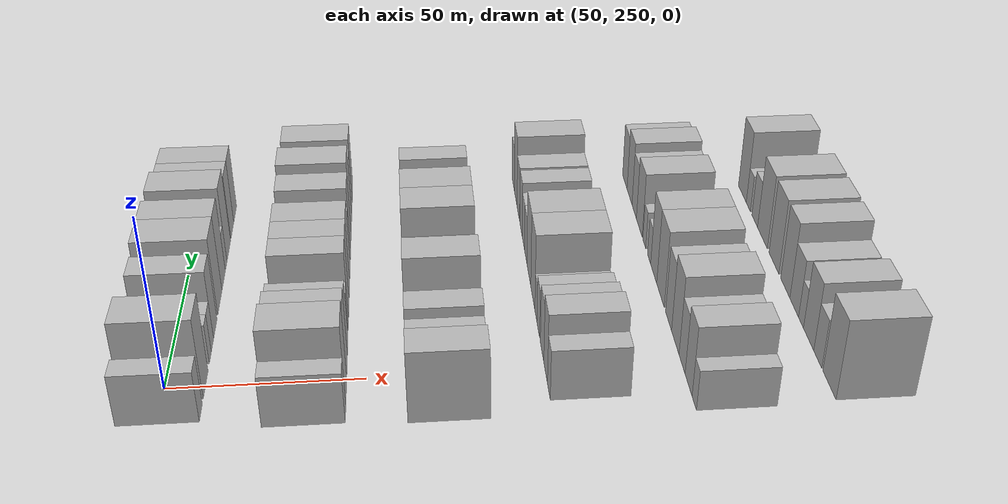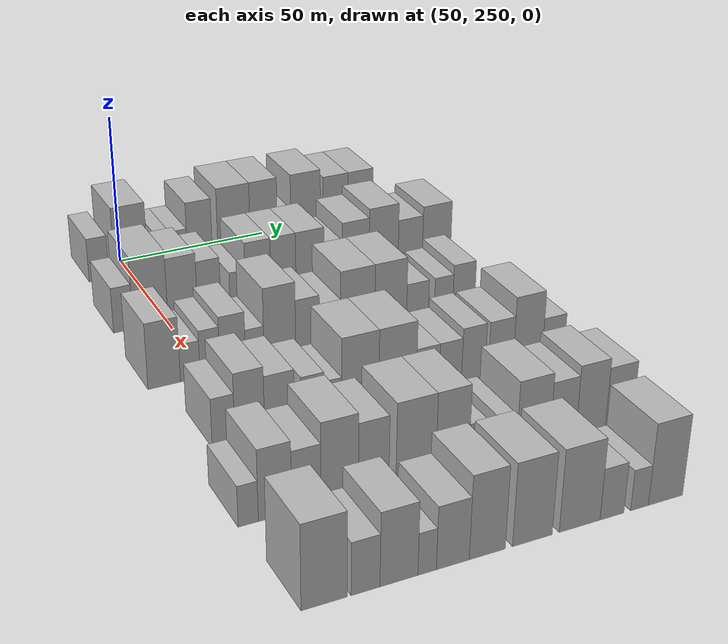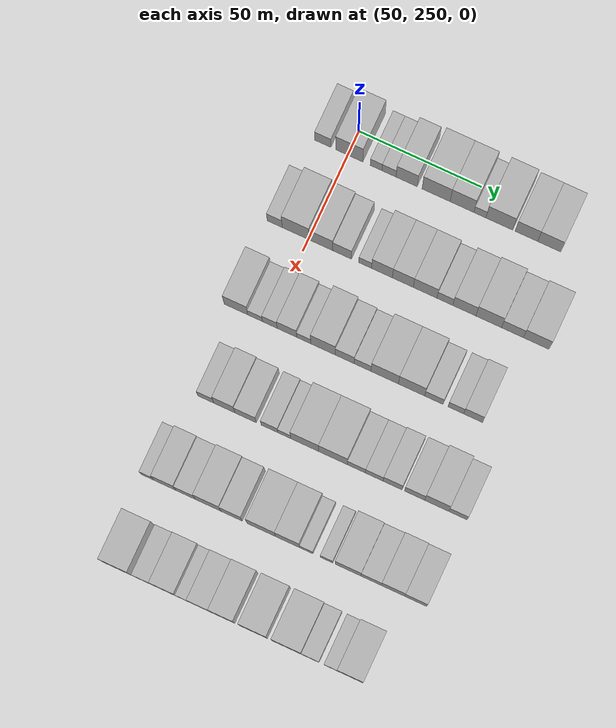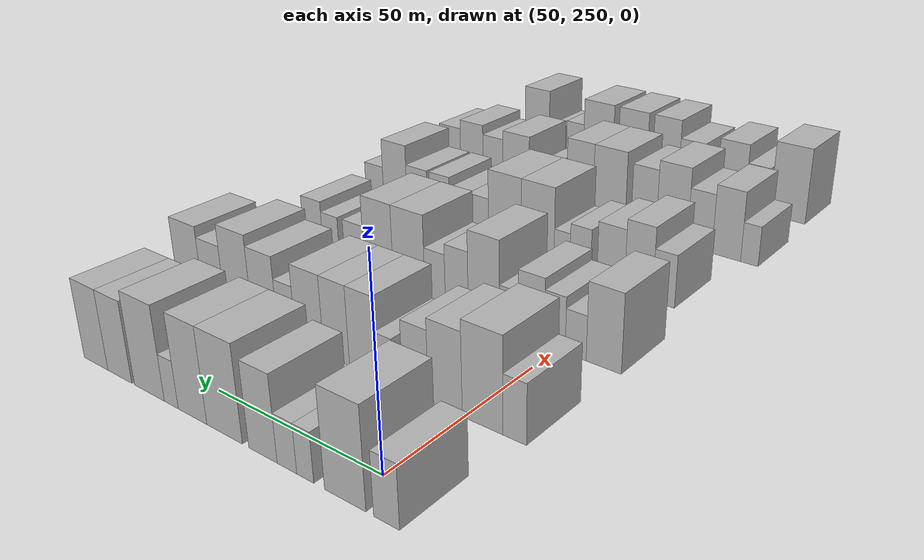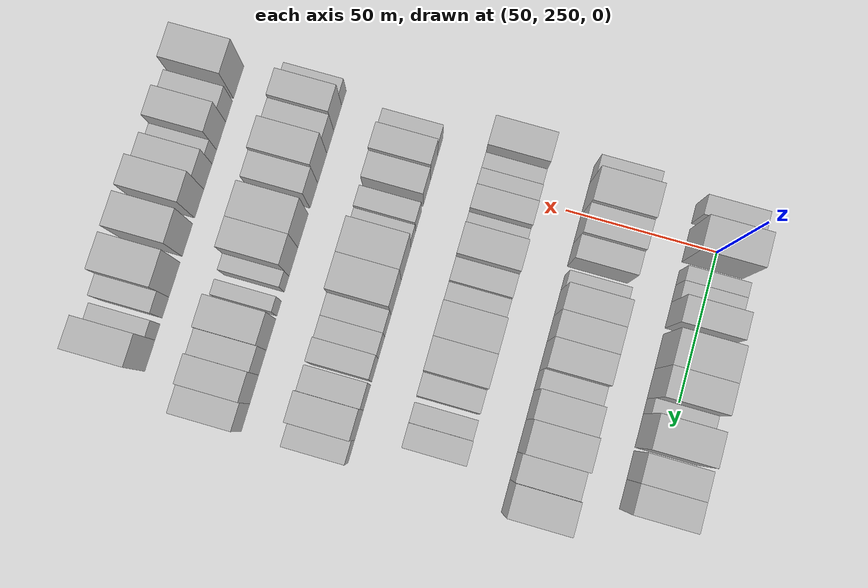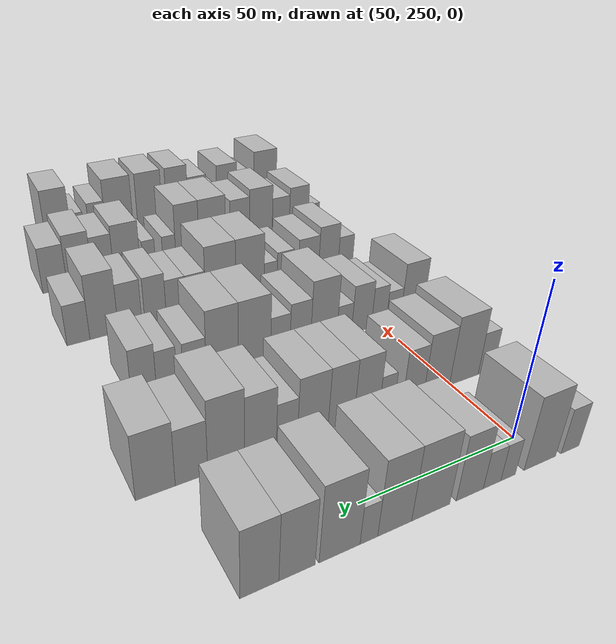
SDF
<sdf version="1.6">
 <world name="default">
  <model name="building_90">
   <static>1</static>
   <pose>50.0000 239.7258 0 0.000000 0.000000 0.000000</pose>
   <link name="link">
    <pose>0 0 7.50 0 0 0</pose>
    <collision name="collision"><geometry><box><size>20.0000 6.5760 15.0000</size></box></geometry></collision>
    <visual name="visual">
     <cast_shadows>0</cast_shadows>
     <geometry><box><size>20.0000 6.5760 15.0000</size></box></geometry>
     <material>
      <script>
       <uri>model://HANNAS_wall/materials/scripts</uri>
       <uri>model://HANNAS_wall/materials/textures</uri>
       <name>vrc/HANNAS_wall</name>
      </script>
     </material>
    </visual>
   </link>
  </model>
  <model name="building_91">
   <static>1</static>
   <pose>50.0000 250.5645 0 0.000000 0.000000 0.000000</pose>
   <link name="link">
    <pose>0 0 12.00 0 0 0</pose>
    <collision name="collision"><geometry><box><size>20.0000 11.1013 24.0000</size></box></geometry></collision>
    <visual name="visual">
     <cast_shadows>0</cast_shadows>
     <geometry><box><size>20.0000 11.1013 24.0000</size></box></geometry>
     <material>
      <script>
       <uri>model://HANNAS_wall/materials/scripts</uri>
       <uri>model://HANNAS_wall/materials/textures</uri>
       <name>vrc/HANNAS_wall</name>
      </script>
     </material>
    </visual>
   </link>
  </model>
  <model name="building_92">
   <static>1</static>
   <pose>50.0000 261.5331 0 0.000000 0.000000 0.000000</pose>
   <link name="link">
    <pose>0 0 6.00 0 0 0</pose>
    <collision name="collision"><geometry><box><size>20.0000 4.8361 12.0000</size></box></geometry></collision>
    <visual name="visual">
     <cast_shadows>0</cast_shadows>
     <geometry><box><size>20.0000 4.8361 12.0000</size></box></geometry>
     <material>
      <script>
       <uri>model://HANNAS_wall/materials/scripts</uri>
       <uri>model://HANNAS_wall/materials/textures</uri>
       <name>vrc/HANNAS_wall</name>
      </script>
     </material>
    </visual>
   </link>
  </model>
  <model name="building_93">
   <static>1</static>
   <pose>50.0000 266.8217 0 0.000000 0.000000 0.000000</pose>
   <link name="link">
    <pose>0 0 6.00 0 0 0</pose>
    <collision name="collision"><geometry><box><size>20.0000 5.7410 12.0000</size></box></geometry></collision>
    <visual name="visual">
     <cast_shadows>0</cast_shadows>
     <geometry><box><size>20.0000 5.7410 12.0000</size></box></geometry>
     <material>
      <script>
       <uri>model://HANNAS_wall/materials/scripts</uri>
       <uri>model://HANNAS_wall/materials/textures</uri>
       <name>vrc/HANNAS_wall</name>
      </script>
     </material>
    </visual>
   </link>
  </model>
  <model name="building_94">
   <static>1</static>
   <pose>50.0000 274.0013 0 0.000000 0.000000 0.000000</pose>
   <link name="link">
    <pose>0 0 10.50 0 0 0</pose>
    <collision name="collision"><geometry><box><size>20.0000 8.6182 21.0000</size></box></geometry></collision>
    <visual name="visual">
     <cast_shadows>0</cast_shadows>
     <geometry><box><size>20.0000 8.6182 21.0000</size></box></geometry>
     <material>
      <script>
       <uri>model://HANNAS_wall/materials/scripts</uri>
       <uri>model://HANNAS_wall/materials/textures</uri>
       <name>vrc/HANNAS_wall</name>
      </script>
     </material>
    </visual>
   </link>
  </model>
  <model name="building_95">
   <static>1</static>
   <pose>50.0000 286.0329 0 0.000000 0.000000 0.000000</pose>
   <link name="link">
    <pose>0 0 12.00 0 0 0</pose>
    <collision name="collision"><geometry><box><size>20.0000 11.4449 24.0000</size></box></geometry></collision>
    <visual name="visual">
     <cast_shadows>0</cast_shadows>
     <geometry><box><size>20.0000 11.4449 24.0000</size></box></geometry>
     <material>
      <script>
       <uri>model://HANNAS_wall/materials/scripts</uri>
       <uri>model://HANNAS_wall/materials/textures</uri>
       <name>vrc/HANNAS_wall</name>
      </script>
     </material>
    </visual>
   </link>
  </model>
  <model name="building_96">
   <static>1</static>
   <pose>50.0000 296.6243 0 0.000000 0.000000 0.000000</pose>
   <link name="link">
    <pose>0 0 12.00 0 0 0</pose>
    <collision name="collision"><geometry><box><size>20.0000 9.7380 24.0000</size></box></geometry></collision>
    <visual name="visual">
     <cast_shadows>0</cast_shadows>
     <geometry><box><size>20.0000 9.7380 24.0000</size></box></geometry>
     <material>
      <script>
       <uri>model://HANNAS_wall/materials/scripts</uri>
       <uri>model://HANNAS_wall/materials/textures</uri>
       <name>vrc/HANNAS_wall</name>
      </script>
     </material>
    </visual>
   </link>
  </model>
  <model name="building_97">
   <static>1</static>
   <pose>50.0000 303.9389 0 0.000000 0.000000 0.000000</pose>
   <link name="link">
    <pose>0 0 6.00 0 0 0</pose>
    <collision name="collision"><geometry><box><size>20.0000 4.8912 12.0000</size></box></geometry></collision>
    <visual name="visual">
     <cast_shadows>0</cast_shadows>
     <geometry><box><size>20.0000 4.8912 12.0000</size></box></geometry>
     <material>
      <script>
       <uri>model://HANNAS_wall/materials/scripts</uri>
       <uri>model://HANNAS_wall/materials/textures</uri>
       <name>vrc/HANNAS_wall</name>
      </script>
     </material>
    </visual>
   </link>
  </model>
  <model name="building_98">
   <static>1</static>
   <pose>50.0000 311.8405 0 0.000000 0.000000 0.000000</pose>
   <link name="link">
    <pose>0 0 12.00 0 0 0</pose>
    <collision name="collision"><geometry><box><size>20.0000 10.9119 24.0000</size></box></geometry></collision>
    <visual name="visual">
     <cast_shadows>0</cast_shadows>
     <geometry><box><size>20.0000 10.9119 24.0000</size></box></geometry>
     <material>
      <script>
       <uri>model://HANNAS_wall/materials/scripts</uri>
       <uri>model://HANNAS_wall/materials/textures</uri>
       <name>vrc/HANNAS_wall</name>
      </script>
     </material>
    </visual>
   </link>
  </model>
  <model name="building_99">
   <static>1</static>
   <pose>50.0000 322.8764 0 0.000000 0.000000 0.000000</pose>
   <link name="link">
    <pose>0 0 10.50 0 0 0</pose>
    <collision name="collision"><geometry><box><size>20.0000 9.1600 21.0000</size></box></geometry></collision>
    <visual name="visual">
     <cast_shadows>0</cast_shadows>
     <geometry><box><size>20.0000 9.1600 21.0000</size></box></geometry>
     <material>
      <script>
       <uri>model://HANNAS_wall/materials/scripts</uri>
       <uri>model://HANNAS_wall/materials/textures</uri>
       <name>vrc/HANNAS_wall</name>
      </script>
     </material>
    </visual>
   </link>
  </model>
  <model name="building_100">
   <static>1</static>
   <pose>50.0000 332.1593 0 0.000000 0.000000 0.000000</pose>
   <link name="link">
    <pose>0 0 10.50 0 0 0</pose>
    <collision name="collision"><geometry><box><size>20.0000 9.4056 21.0000</size></box></geometry></collision>
    <visual name="visual">
     <cast_shadows>0</cast_shadows>
     <geometry><box><size>20.0000 9.4056 21.0000</size></box></geometry>
     <material>
      <script>
       <uri>model://HANNAS_wall/materials/scripts</uri>
       <uri>model://HANNAS_wall/materials/textures</uri>
       <name>vrc/HANNAS_wall</name>
      </script>
     </material>
    </visual>
   </link>
  </model>
  <model name="building_214">
   <static>1</static>
   <pose>85.0000 236.3165 0 0.000000 0.000000 0.000000</pose>
   <link name="link">
    <pose>0 0 7.50 0 0 0</pose>
    <collision name="collision"><geometry><box><size>20.0000 6.1510 15.0000</size></box></geometry></collision>
    <visual name="visual">
     <cast_shadows>0</cast_shadows>
     <geometry><box><size>20.0000 6.1510 15.0000</size></box></geometry>
     <material>
      <script>
       <uri>model://HANNAS_wall/materials/scripts</uri>
       <uri>model://HANNAS_wall/materials/textures</uri>
       <name>vrc/HANNAS_wall</name>
      </script>
     </material>
    </visual>
   </link>
  </model>
  <model name="building_215">
   <static>1</static>
   <pose>85.0000 244.8999 0 0.000000 0.000000 0.000000</pose>
   <link name="link">
    <pose>0 0 12.00 0 0 0</pose>
    <collision name="collision"><geometry><box><size>20.0000 11.0158 24.0000</size></box></geometry></collision>
    <visual name="visual">
     <cast_shadows>0</cast_shadows>
     <geometry><box><size>20.0000 11.0158 24.0000</size></box></geometry>
     <material>
      <script>
       <uri>model://HANNAS_wall/materials/scripts</uri>
       <uri>model://HANNAS_wall/materials/textures</uri>
       <name>vrc/HANNAS_wall</name>
      </script>
     </material>
    </visual>
   </link>
  </model>
  <model name="building_216">
   <static>1</static>
   <pose>85.0000 255.2052 0 0.000000 0.000000 0.000000</pose>
   <link name="link">
    <pose>0 0 10.50 0 0 0</pose>
    <collision name="collision"><geometry><box><size>20.0000 9.5948 21.0000</size></box></geometry></collision>
    <visual name="visual">
     <cast_shadows>0</cast_shadows>
     <geometry><box><size>20.0000 9.5948 21.0000</size></box></geometry>
     <material>
      <script>
       <uri>model://HANNAS_wall/materials/scripts</uri>
       <uri>model://HANNAS_wall/materials/textures</uri>
       <name>vrc/HANNAS_wall</name>
      </script>
     </material>
    </visual>
   </link>
  </model>
  <model name="building_217">
   <static>1</static>
   <pose>85.0000 263.8212 0 0.000000 0.000000 0.000000</pose>
   <link name="link">
    <pose>0 0 9.00 0 0 0</pose>
    <collision name="collision"><geometry><box><size>20.0000 7.6372 18.0000</size></box></geometry></collision>
    <visual name="visual">
     <cast_shadows>0</cast_shadows>
     <geometry><box><size>20.0000 7.6372 18.0000</size></box></geometry>
     <material>
      <script>
       <uri>model://HANNAS_wall/materials/scripts</uri>
       <uri>model://HANNAS_wall/materials/textures</uri>
       <name>vrc/HANNAS_wall</name>
      </script>
     </material>
    </visual>
   </link>
  </model>
  <model name="building_218">
   <static>1</static>
   <pose>85.0000 273.2363 0 0.000000 0.000000 0.000000</pose>
   <link name="link">
    <pose>0 0 6.00 0 0 0</pose>
    <collision name="collision"><geometry><box><size>20.0000 5.1931 12.0000</size></box></geometry></collision>
    <visual name="visual">
     <cast_shadows>0</cast_shadows>
     <geometry><box><size>20.0000 5.1931 12.0000</size></box></geometry>
     <material>
      <script>
       <uri>model://HANNAS_wall/materials/scripts</uri>
       <uri>model://HANNAS_wall/materials/textures</uri>
       <name>vrc/HANNAS_wall</name>
      </script>
     </material>
    </visual>
   </link>
  </model>
  <model name="building_219">
   <static>1</static>
   <pose>85.0000 280.0737 0 0.000000 0.000000 0.000000</pose>
   <link name="link">
    <pose>0 0 10.50 0 0 0</pose>
    <collision name="collision"><geometry><box><size>20.0000 8.4816 21.0000</size></box></geometry></collision>
    <visual name="visual">
     <cast_shadows>0</cast_shadows>
     <geometry><box><size>20.0000 8.4816 21.0000</size></box></geometry>
     <material>
      <script>
       <uri>model://HANNAS_wall/materials/scripts</uri>
       <uri>model://HANNAS_wall/materials/textures</uri>
       <name>vrc/HANNAS_wall</name>
      </script>
     </material>
    </visual>
   </link>
  </model>
  <model name="building_220">
   <static>1</static>
   <pose>85.0000 288.5676 0 0.000000 0.000000 0.000000</pose>
   <link name="link">
    <pose>0 0 10.50 0 0 0</pose>
    <collision name="collision"><geometry><box><size>20.0000 8.5061 21.0000</size></box></geometry></collision>
    <visual name="visual">
     <cast_shadows>0</cast_shadows>
     <geometry><box><size>20.0000 8.5061 21.0000</size></box></geometry>
     <material>
      <script>
       <uri>model://HANNAS_wall/materials/scripts</uri>
       <uri>model://HANNAS_wall/materials/textures</uri>
       <name>vrc/HANNAS_wall</name>
      </script>
     </material>
    </visual>
   </link>
  </model>
  <model name="building_221">
   <static>1</static>
   <pose>85.0000 297.6367 0 0.000000 0.000000 0.000000</pose>
   <link name="link">
    <pose>0 0 10.50 0 0 0</pose>
    <collision name="collision"><geometry><box><size>20.0000 9.6322 21.0000</size></box></geometry></collision>
    <visual name="visual">
     <cast_shadows>0</cast_shadows>
     <geometry><box><size>20.0000 9.6322 21.0000</size></box></geometry>
     <material>
      <script>
       <uri>model://HANNAS_wall/materials/scripts</uri>
       <uri>model://HANNAS_wall/materials/textures</uri>
       <name>vrc/HANNAS_wall</name>
      </script>
     </material>
    </visual>
   </link>
  </model>
  <model name="building_222">
   <static>1</static>
   <pose>85.0000 305.6677 0 0.000000 0.000000 0.000000</pose>
   <link name="link">
    <pose>0 0 7.50 0 0 0</pose>
    <collision name="collision"><geometry><box><size>20.0000 6.4296 15.0000</size></box></geometry></collision>
    <visual name="visual">
     <cast_shadows>0</cast_shadows>
     <geometry><box><size>20.0000 6.4296 15.0000</size></box></geometry>
     <material>
      <script>
       <uri>model://HANNAS_wall/materials/scripts</uri>
       <uri>model://HANNAS_wall/materials/textures</uri>
       <name>vrc/HANNAS_wall</name>
      </script>
     </material>
    </visual>
   </link>
  </model>
  <model name="building_223">
   <static>1</static>
   <pose>85.0000 313.5591 0 0.000000 0.000000 0.000000</pose>
   <link name="link">
    <pose>0 0 10.50 0 0 0</pose>
    <collision name="collision"><geometry><box><size>20.0000 9.3533 21.0000</size></box></geometry></collision>
    <visual name="visual">
     <cast_shadows>0</cast_shadows>
     <geometry><box><size>20.0000 9.3533 21.0000</size></box></geometry>
     <material>
      <script>
       <uri>model://HANNAS_wall/materials/scripts</uri>
       <uri>model://HANNAS_wall/materials/textures</uri>
       <name>vrc/HANNAS_wall</name>
      </script>
     </material>
    </visual>
   </link>
  </model>
  <model name="building_224">
   <static>1</static>
   <pose>85.0000 323.4462 0 0.000000 0.000000 0.000000</pose>
   <link name="link">
    <pose>0 0 12.00 0 0 0</pose>
    <collision name="collision"><geometry><box><size>20.0000 10.4209 24.0000</size></box></geometry></collision>
    <visual name="visual">
     <cast_shadows>0</cast_shadows>
     <geometry><box><size>20.0000 10.4209 24.0000</size></box></geometry>
     <material>
      <script>
       <uri>model://HANNAS_wall/materials/scripts</uri>
       <uri>model://HANNAS_wall/materials/textures</uri>
       <name>vrc/HANNAS_wall</name>
      </script>
     </material>
    </visual>
   </link>
  </model>
  <model name="building_225">
   <static>1</static>
   <pose>85.0000 333.0676 0 0.000000 0.000000 0.000000</pose>
   <link name="link">
    <pose>0 0 9.00 0 0 0</pose>
    <collision name="collision"><geometry><box><size>20.0000 8.8218 18.0000</size></box></geometry></collision>
    <visual name="visual">
     <cast_shadows>0</cast_shadows>
     <geometry><box><size>20.0000 8.8218 18.0000</size></box></geometry>
     <material>
      <script>
       <uri>model://HANNAS_wall/materials/scripts</uri>
       <uri>model://HANNAS_wall/materials/textures</uri>
       <name>vrc/HANNAS_wall</name>
      </script>
     </material>
    </visual>
   </link>
  </model>
  <model name="building_226">
   <static>1</static>
   <pose>85.0000 342.6846 0 0.000000 0.000000 0.000000</pose>
   <link name="link">
    <pose>0 0 10.50 0 0 0</pose>
    <collision name="collision"><geometry><box><size>20.0000 10.4122 21.0000</size></box></geometry></collision>
    <visual name="visual">
     <cast_shadows>0</cast_shadows>
     <geometry><box><size>20.0000 10.4122 21.0000</size></box></geometry>
     <material>
      <script>
       <uri>model://HANNAS_wall/materials/scripts</uri>
       <uri>model://HANNAS_wall/materials/textures</uri>
       <name>vrc/HANNAS_wall</name>
      </script>
     </material>
    </visual>
   </link>
  </model>
  <model name="building_342">
   <static>1</static>
   <pose>120.0000 236.8733 0 0.000000 0.000000 0.000000</pose>
   <link name="link">
    <pose>0 0 10.50 0 0 0</pose>
    <collision name="collision"><geometry><box><size>20.0000 9.6494 21.0000</size></box></geometry></collision>
    <visual name="visual">
     <cast_shadows>0</cast_shadows>
     <geometry><box><size>20.0000 9.6494 21.0000</size></box></geometry>
     <material>
      <script>
       <uri>model://HANNAS_wall/materials/scripts</uri>
       <uri>model://HANNAS_wall/materials/textures</uri>
       <name>vrc/HANNAS_wall</name>
      </script>
     </material>
    </visual>
   </link>
  </model>
  <model name="building_343">
   <static>1</static>
   <pose>120.0000 244.6549 0 0.000000 0.000000 0.000000</pose>
   <link name="link">
    <pose>0 0 6.00 0 0 0</pose>
    <collision name="collision"><geometry><box><size>20.0000 5.9138 12.0000</size></box></geometry></collision>
    <visual name="visual">
     <cast_shadows>0</cast_shadows>
     <geometry><box><size>20.0000 5.9138 12.0000</size></box></geometry>
     <material>
      <script>
       <uri>model://HANNAS_wall/materials/scripts</uri>
       <uri>model://HANNAS_wall/materials/textures</uri>
       <name>vrc/HANNAS_wall</name>
      </script>
     </material>
    </visual>
   </link>
  </model>
  <model name="building_344">
   <static>1</static>
   <pose>120.0000 250.6389 0 0.000000 0.000000 0.000000</pose>
   <link name="link">
    <pose>0 0 7.50 0 0 0</pose>
    <collision name="collision"><geometry><box><size>20.0000 6.0542 15.0000</size></box></geometry></collision>
    <visual name="visual">
     <cast_shadows>0</cast_shadows>
     <geometry><box><size>20.0000 6.0542 15.0000</size></box></geometry>
     <material>
      <script>
       <uri>model://HANNAS_wall/materials/scripts</uri>
       <uri>model://HANNAS_wall/materials/textures</uri>
       <name>vrc/HANNAS_wall</name>
      </script>
     </material>
    </visual>
   </link>
  </model>
  <model name="building_345">
   <static>1</static>
   <pose>120.0000 257.6098 0 0.000000 0.000000 0.000000</pose>
   <link name="link">
    <pose>0 0 9.00 0 0 0</pose>
    <collision name="collision"><geometry><box><size>20.0000 7.8876 18.0000</size></box></geometry></collision>
    <visual name="visual">
     <cast_shadows>0</cast_shadows>
     <geometry><box><size>20.0000 7.8876 18.0000</size></box></geometry>
     <material>
      <script>
       <uri>model://HANNAS_wall/materials/scripts</uri>
       <uri>model://HANNAS_wall/materials/textures</uri>
       <name>vrc/HANNAS_wall</name>
      </script>
     </material>
    </visual>
   </link>
  </model>
  <model name="building_346">
   <static>1</static>
   <pose>120.0000 264.4290 0 0.000000 0.000000 0.000000</pose>
   <link name="link">
    <pose>0 0 6.00 0 0 0</pose>
    <collision name="collision"><geometry><box><size>20.0000 5.7509 12.0000</size></box></geometry></collision>
    <visual name="visual">
     <cast_shadows>0</cast_shadows>
     <geometry><box><size>20.0000 5.7509 12.0000</size></box></geometry>
     <material>
      <script>
       <uri>model://HANNAS_wall/materials/scripts</uri>
       <uri>model://HANNAS_wall/materials/textures</uri>
       <name>vrc/HANNAS_wall</name>
      </script>
     </material>
    </visual>
   </link>
  </model>
  <model name="building_347">
   <static>1</static>
   <pose>120.0000 272.2918 0 0.000000 0.000000 0.000000</pose>
   <link name="link">
    <pose>0 0 12.00 0 0 0</pose>
    <collision name="collision"><geometry><box><size>20.0000 9.9747 24.0000</size></box></geometry></collision>
    <visual name="visual">
     <cast_shadows>0</cast_shadows>
     <geometry><box><size>20.0000 9.9747 24.0000</size></box></geometry>
     <material>
      <script>
       <uri>model://HANNAS_wall/materials/scripts</uri>
       <uri>model://HANNAS_wall/materials/textures</uri>
       <name>vrc/HANNAS_wall</name>
      </script>
     </material>
    </visual>
   </link>
  </model>
  <model name="building_348">
   <static>1</static>
   <pose>120.0000 281.0631 0 0.000000 0.000000 0.000000</pose>
   <link name="link">
    <pose>0 0 9.00 0 0 0</pose>
    <collision name="collision"><geometry><box><size>20.0000 7.5680 18.0000</size></box></geometry></collision>
    <visual name="visual">
     <cast_shadows>0</cast_shadows>
     <geometry><box><size>20.0000 7.5680 18.0000</size></box></geometry>
     <material>
      <script>
       <uri>model://HANNAS_wall/materials/scripts</uri>
       <uri>model://HANNAS_wall/materials/textures</uri>
       <name>vrc/HANNAS_wall</name>
      </script>
     </material>
    </visual>
   </link>
  </model>
  <model name="building_349">
   <static>1</static>
   <pose>120.0000 288.2905 0 0.000000 0.000000 0.000000</pose>
   <link name="link">
    <pose>0 0 7.50 0 0 0</pose>
    <collision name="collision"><geometry><box><size>20.0000 6.8868 15.0000</size></box></geometry></collision>
    <visual name="visual">
     <cast_shadows>0</cast_shadows>
     <geometry><box><size>20.0000 6.8868 15.0000</size></box></geometry>
     <material>
      <script>
       <uri>model://HANNAS_wall/materials/scripts</uri>
       <uri>model://HANNAS_wall/materials/textures</uri>
       <name>vrc/HANNAS_wall</name>
      </script>
     </material>
    </visual>
   </link>
  </model>
  <model name="building_350">
   <static>1</static>
   <pose>120.0000 297.2952 0 0.000000 0.000000 0.000000</pose>
   <link name="link">
    <pose>0 0 12.00 0 0 0</pose>
    <collision name="collision"><geometry><box><size>20.0000 11.1227 24.0000</size></box></geometry></collision>
    <visual name="visual">
     <cast_shadows>0</cast_shadows>
     <geometry><box><size>20.0000 11.1227 24.0000</size></box></geometry>
     <material>
      <script>
       <uri>model://HANNAS_wall/materials/scripts</uri>
       <uri>model://HANNAS_wall/materials/textures</uri>
       <name>vrc/HANNAS_wall</name>
      </script>
     </material>
    </visual>
   </link>
  </model>
  <model name="building_351">
   <static>1</static>
   <pose>120.0000 308.1706 0 0.000000 0.000000 0.000000</pose>
   <link name="link">
    <pose>0 0 12.00 0 0 0</pose>
    <collision name="collision"><geometry><box><size>20.0000 10.6281 24.0000</size></box></geometry></collision>
    <visual name="visual">
     <cast_shadows>0</cast_shadows>
     <geometry><box><size>20.0000 10.6281 24.0000</size></box></geometry>
     <material>
      <script>
       <uri>model://HANNAS_wall/materials/scripts</uri>
       <uri>model://HANNAS_wall/materials/textures</uri>
       <name>vrc/HANNAS_wall</name>
      </script>
     </material>
    </visual>
   </link>
  </model>
  <model name="building_352">
   <static>1</static>
   <pose>120.0000 317.1951 0 0.000000 0.000000 0.000000</pose>
   <link name="link">
    <pose>0 0 7.50 0 0 0</pose>
    <collision name="collision"><geometry><box><size>20.0000 7.4209 15.0000</size></box></geometry></collision>
    <visual name="visual">
     <cast_shadows>0</cast_shadows>
     <geometry><box><size>20.0000 7.4209 15.0000</size></box></geometry>
     <material>
      <script>
       <uri>model://HANNAS_wall/materials/scripts</uri>
       <uri>model://HANNAS_wall/materials/textures</uri>
       <name>vrc/HANNAS_wall</name>
      </script>
     </material>
    </visual>
   </link>
  </model>
  <model name="building_353">
   <static>1</static>
   <pose>120.0000 326.0858 0 0.000000 0.000000 0.000000</pose>
   <link name="link">
    <pose>0 0 7.50 0 0 0</pose>
    <collision name="collision"><geometry><box><size>20.0000 6.3603 15.0000</size></box></geometry></collision>
    <visual name="visual">
     <cast_shadows>0</cast_shadows>
     <geometry><box><size>20.0000 6.3603 15.0000</size></box></geometry>
     <material>
      <script>
       <uri>model://HANNAS_wall/materials/scripts</uri>
       <uri>model://HANNAS_wall/materials/textures</uri>
       <name>vrc/HANNAS_wall</name>
      </script>
     </material>
    </visual>
   </link>
  </model>
  <model name="building_354">
   <static>1</static>
   <pose>120.0000 333.0800 0 0.000000 0.000000 0.000000</pose>
   <link name="link">
    <pose>0 0 9.00 0 0 0</pose>
    <collision name="collision"><geometry><box><size>20.0000 7.6280 18.0000</size></box></geometry></collision>
    <visual name="visual">
     <cast_shadows>0</cast_shadows>
     <geometry><box><size>20.0000 7.6280 18.0000</size></box></geometry>
     <material>
      <script>
       <uri>model://HANNAS_wall/materials/scripts</uri>
       <uri>model://HANNAS_wall/materials/textures</uri>
       <name>vrc/HANNAS_wall</name>
      </script>
     </material>
    </visual>
   </link>
  </model>
  <model name="building_468">
   <static>1</static>
   <pose>155.0000 241.0048 0 0.000000 0.000000 0.000000</pose>
   <link name="link">
    <pose>0 0 7.50 0 0 0</pose>
    <collision name="collision"><geometry><box><size>20.0000 6.4687 15.0000</size></box></geometry></collision>
    <visual name="visual">
     <cast_shadows>0</cast_shadows>
     <geometry><box><size>20.0000 6.4687 15.0000</size></box></geometry>
     <material>
      <script>
       <uri>model://HANNAS_wall/materials/scripts</uri>
       <uri>model://HANNAS_wall/materials/textures</uri>
       <name>vrc/HANNAS_wall</name>
      </script>
     </material>
    </visual>
   </link>
  </model>
  <model name="building_469">
   <static>1</static>
   <pose>155.0000 248.5085 0 0.000000 0.000000 0.000000</pose>
   <link name="link">
    <pose>0 0 10.50 0 0 0</pose>
    <collision name="collision"><geometry><box><size>20.0000 8.5388 21.0000</size></box></geometry></collision>
    <visual name="visual">
     <cast_shadows>0</cast_shadows>
     <geometry><box><size>20.0000 8.5388 21.0000</size></box></geometry>
     <material>
      <script>
       <uri>model://HANNAS_wall/materials/scripts</uri>
       <uri>model://HANNAS_wall/materials/textures</uri>
       <name>vrc/HANNAS_wall</name>
      </script>
     </material>
    </visual>
   </link>
  </model>
  <model name="building_470">
   <static>1</static>
   <pose>155.0000 257.1087 0 0.000000 0.000000 0.000000</pose>
   <link name="link">
    <pose>0 0 9.00 0 0 0</pose>
    <collision name="collision"><geometry><box><size>20.0000 8.6616 18.0000</size></box></geometry></collision>
    <visual name="visual">
     <cast_shadows>0</cast_shadows>
     <geometry><box><size>20.0000 8.6616 18.0000</size></box></geometry>
     <material>
      <script>
       <uri>model://HANNAS_wall/materials/scripts</uri>
       <uri>model://HANNAS_wall/materials/textures</uri>
       <name>vrc/HANNAS_wall</name>
      </script>
     </material>
    </visual>
   </link>
  </model>
  <model name="building_471">
   <static>1</static>
   <pose>155.0000 266.8219 0 0.000000 0.000000 0.000000</pose>
   <link name="link">
    <pose>0 0 7.50 0 0 0</pose>
    <collision name="collision"><geometry><box><size>20.0000 6.7648 15.0000</size></box></geometry></collision>
    <visual name="visual">
     <cast_shadows>0</cast_shadows>
     <geometry><box><size>20.0000 6.7648 15.0000</size></box></geometry>
     <material>
      <script>
       <uri>model://HANNAS_wall/materials/scripts</uri>
       <uri>model://HANNAS_wall/materials/textures</uri>
       <name>vrc/HANNAS_wall</name>
      </script>
     </material>
    </visual>
   </link>
  </model>
  <model name="building_472">
   <static>1</static>
   <pose>155.0000 272.8223 0 0.000000 0.000000 0.000000</pose>
   <link name="link">
    <pose>0 0 6.00 0 0 0</pose>
    <collision name="collision"><geometry><box><size>20.0000 5.2361 12.0000</size></box></geometry></collision>
    <visual name="visual">
     <cast_shadows>0</cast_shadows>
     <geometry><box><size>20.0000 5.2361 12.0000</size></box></geometry>
     <material>
      <script>
       <uri>model://HANNAS_wall/materials/scripts</uri>
       <uri>model://HANNAS_wall/materials/textures</uri>
       <name>vrc/HANNAS_wall</name>
      </script>
     </material>
    </visual>
   </link>
  </model>
  <model name="building_473">
   <static>1</static>
   <pose>155.0000 281.0886 0 0.000000 0.000000 0.000000</pose>
   <link name="link">
    <pose>0 0 12.00 0 0 0</pose>
    <collision name="collision"><geometry><box><size>20.0000 11.2964 24.0000</size></box></geometry></collision>
    <visual name="visual">
     <cast_shadows>0</cast_shadows>
     <geometry><box><size>20.0000 11.2964 24.0000</size></box></geometry>
     <material>
      <script>
       <uri>model://HANNAS_wall/materials/scripts</uri>
       <uri>model://HANNAS_wall/materials/textures</uri>
       <name>vrc/HANNAS_wall</name>
      </script>
     </material>
    </visual>
   </link>
  </model>
  <model name="building_474">
   <static>1</static>
   <pose>155.0000 292.5415 0 0.000000 0.000000 0.000000</pose>
   <link name="link">
    <pose>0 0 12.00 0 0 0</pose>
    <collision name="collision"><geometry><box><size>20.0000 11.6094 24.0000</size></box></geometry></collision>
    <visual name="visual">
     <cast_shadows>0</cast_shadows>
     <geometry><box><size>20.0000 11.6094 24.0000</size></box></geometry>
     <material>
      <script>
       <uri>model://HANNAS_wall/materials/scripts</uri>
       <uri>model://HANNAS_wall/materials/textures</uri>
       <name>vrc/HANNAS_wall</name>
      </script>
     </material>
    </visual>
   </link>
  </model>
  <model name="building_475">
   <static>1</static>
   <pose>155.0000 301.9763 0 0.000000 0.000000 0.000000</pose>
   <link name="link">
    <pose>0 0 7.50 0 0 0</pose>
    <collision name="collision"><geometry><box><size>20.0000 7.2601 15.0000</size></box></geometry></collision>
    <visual name="visual">
     <cast_shadows>0</cast_shadows>
     <geometry><box><size>20.0000 7.2601 15.0000</size></box></geometry>
     <material>
      <script>
       <uri>model://HANNAS_wall/materials/scripts</uri>
       <uri>model://HANNAS_wall/materials/textures</uri>
       <name>vrc/HANNAS_wall</name>
      </script>
     </material>
    </visual>
   </link>
  </model>
  <model name="building_476">
   <static>1</static>
   <pose>155.0000 309.1882 0 0.000000 0.000000 0.000000</pose>
   <link name="link">
    <pose>0 0 7.50 0 0 0</pose>
    <collision name="collision"><geometry><box><size>20.0000 7.1638 15.0000</size></box></geometry></collision>
    <visual name="visual">
     <cast_shadows>0</cast_shadows>
     <geometry><box><size>20.0000 7.1638 15.0000</size></box></geometry>
     <material>
      <script>
       <uri>model://HANNAS_wall/materials/scripts</uri>
       <uri>model://HANNAS_wall/materials/textures</uri>
       <name>vrc/HANNAS_wall</name>
      </script>
     </material>
    </visual>
   </link>
  </model>
  <model name="building_477">
   <static>1</static>
   <pose>155.0000 316.5781 0 0.000000 0.000000 0.000000</pose>
   <link name="link">
    <pose>0 0 9.00 0 0 0</pose>
    <collision name="collision"><geometry><box><size>20.0000 7.6159 18.0000</size></box></geometry></collision>
    <visual name="visual">
     <cast_shadows>0</cast_shadows>
     <geometry><box><size>20.0000 7.6159 18.0000</size></box></geometry>
     <material>
      <script>
       <uri>model://HANNAS_wall/materials/scripts</uri>
       <uri>model://HANNAS_wall/materials/textures</uri>
       <name>vrc/HANNAS_wall</name>
      </script>
     </material>
    </visual>
   </link>
  </model>
  <model name="building_478">
   <static>1</static>
   <pose>155.0000 325.4626 0 0.000000 0.000000 0.000000</pose>
   <link name="link">
    <pose>0 0 9.00 0 0 0</pose>
    <collision name="collision"><geometry><box><size>20.0000 8.1532 18.0000</size></box></geometry></collision>
    <visual name="visual">
     <cast_shadows>0</cast_shadows>
     <geometry><box><size>20.0000 8.1532 18.0000</size></box></geometry>
     <material>
      <script>
       <uri>model://HANNAS_wall/materials/scripts</uri>
       <uri>model://HANNAS_wall/materials/textures</uri>
       <name>vrc/HANNAS_wall</name>
      </script>
     </material>
    </visual>
   </link>
  </model>
  <model name="building_479">
   <static>1</static>
   <pose>155.0000 334.3657 0 0.000000 0.000000 0.000000</pose>
   <link name="link">
    <pose>0 0 12.00 0 0 0</pose>
    <collision name="collision"><geometry><box><size>20.0000 9.6531 24.0000</size></box></geometry></collision>
    <visual name="visual">
     <cast_shadows>0</cast_shadows>
     <geometry><box><size>20.0000 9.6531 24.0000</size></box></geometry>
     <material>
      <script>
       <uri>model://HANNAS_wall/materials/scripts</uri>
       <uri>model://HANNAS_wall/materials/textures</uri>
       <name>vrc/HANNAS_wall</name>
      </script>
     </material>
    </visual>
   </link>
  </model>
  <model name="building_480">
   <static>1</static>
   <pose>155.0000 342.9302 0 0.000000 0.000000 0.000000</pose>
   <link name="link">
    <pose>0 0 7.50 0 0 0</pose>
    <collision name="collision"><geometry><box><size>20.0000 7.4758 15.0000</size></box></geometry></collision>
    <visual name="visual">
     <cast_shadows>0</cast_shadows>
     <geometry><box><size>20.0000 7.4758 15.0000</size></box></geometry>
     <material>
      <script>
       <uri>model://HANNAS_wall/materials/scripts</uri>
       <uri>model://HANNAS_wall/materials/textures</uri>
       <name>vrc/HANNAS_wall</name>
      </script>
     </material>
    </visual>
   </link>
  </model>
  <model name="building_586">
   <static>1</static>
   <pose>190.0000 233.7125 0 0.000000 0.000000 0.000000</pose>
   <link name="link">
    <pose>0 0 6.00 0 0 0</pose>
    <collision name="collision"><geometry><box><size>20.0000 5.3182 12.0000</size></box></geometry></collision>
    <visual name="visual">
     <cast_shadows>0</cast_shadows>
     <geometry><box><size>20.0000 5.3182 12.0000</size></box></geometry>
     <material>
      <script>
       <uri>model://HANNAS_wall/materials/scripts</uri>
       <uri>model://HANNAS_wall/materials/textures</uri>
       <name>vrc/HANNAS_wall</name>
      </script>
     </material>
    </visual>
   </link>
  </model>
  <model name="building_587">
   <static>1</static>
   <pose>190.0000 240.8202 0 0.000000 0.000000 0.000000</pose>
   <link name="link">
    <pose>0 0 10.50 0 0 0</pose>
    <collision name="collision"><geometry><box><size>20.0000 8.8973 21.0000</size></box></geometry></collision>
    <visual name="visual">
     <cast_shadows>0</cast_shadows>
     <geometry><box><size>20.0000 8.8973 21.0000</size></box></geometry>
     <material>
      <script>
       <uri>model://HANNAS_wall/materials/scripts</uri>
       <uri>model://HANNAS_wall/materials/textures</uri>
       <name>vrc/HANNAS_wall</name>
      </script>
     </material>
    </visual>
   </link>
  </model>
  <model name="building_588">
   <static>1</static>
   <pose>190.0000 249.2371 0 0.000000 0.000000 0.000000</pose>
   <link name="link">
    <pose>0 0 9.00 0 0 0</pose>
    <collision name="collision"><geometry><box><size>20.0000 7.9365 18.0000</size></box></geometry></collision>
    <visual name="visual">
     <cast_shadows>0</cast_shadows>
     <geometry><box><size>20.0000 7.9365 18.0000</size></box></geometry>
     <material>
      <script>
       <uri>model://HANNAS_wall/materials/scripts</uri>
       <uri>model://HANNAS_wall/materials/textures</uri>
       <name>vrc/HANNAS_wall</name>
      </script>
     </material>
    </visual>
   </link>
  </model>
  <model name="building_589">
   <static>1</static>
   <pose>190.0000 258.3644 0 0.000000 0.000000 0.000000</pose>
   <link name="link">
    <pose>0 0 12.00 0 0 0</pose>
    <collision name="collision"><geometry><box><size>20.0000 10.3181 24.0000</size></box></geometry></collision>
    <visual name="visual">
     <cast_shadows>0</cast_shadows>
     <geometry><box><size>20.0000 10.3181 24.0000</size></box></geometry>
     <material>
      <script>
       <uri>model://HANNAS_wall/materials/scripts</uri>
       <uri>model://HANNAS_wall/materials/textures</uri>
       <name>vrc/HANNAS_wall</name>
      </script>
     </material>
    </visual>
   </link>
  </model>
  <model name="building_590">
   <static>1</static>
   <pose>190.0000 267.8165 0 0.000000 0.000000 0.000000</pose>
   <link name="link">
    <pose>0 0 10.50 0 0 0</pose>
    <collision name="collision"><geometry><box><size>20.0000 8.5861 21.0000</size></box></geometry></collision>
    <visual name="visual">
     <cast_shadows>0</cast_shadows>
     <geometry><box><size>20.0000 8.5861 21.0000</size></box></geometry>
     <material>
      <script>
       <uri>model://HANNAS_wall/materials/scripts</uri>
       <uri>model://HANNAS_wall/materials/textures</uri>
       <name>vrc/HANNAS_wall</name>
      </script>
     </material>
    </visual>
   </link>
  </model>
  <model name="building_591">
   <static>1</static>
   <pose>190.0000 279.8427 0 0.000000 0.000000 0.000000</pose>
   <link name="link">
    <pose>0 0 12.00 0 0 0</pose>
    <collision name="collision"><geometry><box><size>20.0000 11.4664 24.0000</size></box></geometry></collision>
    <visual name="visual">
     <cast_shadows>0</cast_shadows>
     <geometry><box><size>20.0000 11.4664 24.0000</size></box></geometry>
     <material>
      <script>
       <uri>model://HANNAS_wall/materials/scripts</uri>
       <uri>model://HANNAS_wall/materials/textures</uri>
       <name>vrc/HANNAS_wall</name>
      </script>
     </material>
    </visual>
   </link>
  </model>
  <model name="building_592">
   <static>1</static>
   <pose>190.0000 290.4289 0 0.000000 0.000000 0.000000</pose>
   <link name="link">
    <pose>0 0 12.00 0 0 0</pose>
    <collision name="collision"><geometry><box><size>20.0000 9.7060 24.0000</size></box></geometry></collision>
    <visual name="visual">
     <cast_shadows>0</cast_shadows>
     <geometry><box><size>20.0000 9.7060 24.0000</size></box></geometry>
     <material>
      <script>
       <uri>model://HANNAS_wall/materials/scripts</uri>
       <uri>model://HANNAS_wall/materials/textures</uri>
       <name>vrc/HANNAS_wall</name>
      </script>
     </material>
    </visual>
   </link>
  </model>
  <model name="building_593">
   <static>1</static>
   <pose>190.0000 297.9487 0 0.000000 0.000000 0.000000</pose>
   <link name="link">
    <pose>0 0 6.00 0 0 0</pose>
    <collision name="collision"><geometry><box><size>20.0000 5.3336 12.0000</size></box></geometry></collision>
    <visual name="visual">
     <cast_shadows>0</cast_shadows>
     <geometry><box><size>20.0000 5.3336 12.0000</size></box></geometry>
     <material>
      <script>
       <uri>model://HANNAS_wall/materials/scripts</uri>
       <uri>model://HANNAS_wall/materials/textures</uri>
       <name>vrc/HANNAS_wall</name>
      </script>
     </material>
    </visual>
   </link>
  </model>
  <model name="building_594">
   <static>1</static>
   <pose>190.0000 306.1184 0 0.000000 0.000000 0.000000</pose>
   <link name="link">
    <pose>0 0 6.00 0 0 0</pose>
    <collision name="collision"><geometry><box><size>20.0000 5.0059 12.0000</size></box></geometry></collision>
    <visual name="visual">
     <cast_shadows>0</cast_shadows>
     <geometry><box><size>20.0000 5.0059 12.0000</size></box></geometry>
     <material>
      <script>
       <uri>model://HANNAS_wall/materials/scripts</uri>
       <uri>model://HANNAS_wall/materials/textures</uri>
       <name>vrc/HANNAS_wall</name>
      </script>
     </material>
    </visual>
   </link>
  </model>
  <model name="building_595">
   <static>1</static>
   <pose>190.0000 314.7970 0 0.000000 0.000000 0.000000</pose>
   <link name="link">
    <pose>0 0 10.50 0 0 0</pose>
    <collision name="collision"><geometry><box><size>20.0000 10.3513 21.0000</size></box></geometry></collision>
    <visual name="visual">
     <cast_shadows>0</cast_shadows>
     <geometry><box><size>20.0000 10.3513 21.0000</size></box></geometry>
     <material>
      <script>
       <uri>model://HANNAS_wall/materials/scripts</uri>
       <uri>model://HANNAS_wall/materials/textures</uri>
       <name>vrc/HANNAS_wall</name>
      </script>
     </material>
    </visual>
   </link>
  </model>
  <model name="building_596">
   <static>1</static>
   <pose>190.0000 324.0584 0 0.000000 0.000000 0.000000</pose>
   <link name="link">
    <pose>0 0 9.00 0 0 0</pose>
    <collision name="collision"><geometry><box><size>20.0000 8.1715 18.0000</size></box></geometry></collision>
    <visual name="visual">
     <cast_shadows>0</cast_shadows>
     <geometry><box><size>20.0000 8.1715 18.0000</size></box></geometry>
     <material>
      <script>
       <uri>model://HANNAS_wall/materials/scripts</uri>
       <uri>model://HANNAS_wall/materials/textures</uri>
       <name>vrc/HANNAS_wall</name>
      </script>
     </material>
    </visual>
   </link>
  </model>
  <model name="building_597">
   <static>1</static>
   <pose>190.0000 332.8342 0 0.000000 0.000000 0.000000</pose>
   <link name="link">
    <pose>0 0 10.50 0 0 0</pose>
    <collision name="collision"><geometry><box><size>20.0000 9.3800 21.0000</size></box></geometry></collision>
    <visual name="visual">
     <cast_shadows>0</cast_shadows>
     <geometry><box><size>20.0000 9.3800 21.0000</size></box></geometry>
     <material>
      <script>
       <uri>model://HANNAS_wall/materials/scripts</uri>
       <uri>model://HANNAS_wall/materials/textures</uri>
       <name>vrc/HANNAS_wall</name>
      </script>
     </material>
    </visual>
   </link>
  </model>
  <model name="building_598">
   <static>1</static>
   <pose>190.0000 341.9660 0 0.000000 0.000000 0.000000</pose>
   <link name="link">
    <pose>0 0 9.00 0 0 0</pose>
    <collision name="collision"><geometry><box><size>20.0000 8.8837 18.0000</size></box></geometry></collision>
    <visual name="visual">
     <cast_shadows>0</cast_shadows>
     <geometry><box><size>20.0000 8.8837 18.0000</size></box></geometry>
     <material>
      <script>
       <uri>model://HANNAS_wall/materials/scripts</uri>
       <uri>model://HANNAS_wall/materials/textures</uri>
       <name>vrc/HANNAS_wall</name>
      </script>
     </material>
    </visual>
   </link>
  </model>
  <model name="building_702">
   <static>1</static>
   <pose>225.0000 237.9733 0 0.000000 0.000000 0.000000</pose>
   <link name="link">
    <pose>0 0 12.00 0 0 0</pose>
    <collision name="collision"><geometry><box><size>20.0000 11.4924 24.0000</size></box></geometry></collision>
    <visual name="visual">
     <cast_shadows>0</cast_shadows>
     <geometry><box><size>20.0000 11.4924 24.0000</size></box></geometry>
     <material>
      <script>
       <uri>model://HANNAS_wall/materials/scripts</uri>
       <uri>model://HANNAS_wall/materials/textures</uri>
       <name>vrc/HANNAS_wall</name>
      </script>
     </material>
    </visual>
   </link>
  </model>
  <model name="building_703">
   <static>1</static>
   <pose>225.0000 248.3933 0 0.000000 0.000000 0.000000</pose>
   <link name="link">
    <pose>0 0 7.50 0 0 0</pose>
    <collision name="collision"><geometry><box><size>20.0000 7.3475 15.0000</size></box></geometry></collision>
    <visual name="visual">
     <cast_shadows>0</cast_shadows>
     <geometry><box><size>20.0000 7.3475 15.0000</size></box></geometry>
     <material>
      <script>
       <uri>model://HANNAS_wall/materials/scripts</uri>
       <uri>model://HANNAS_wall/materials/textures</uri>
       <name>vrc/HANNAS_wall</name>
      </script>
     </material>
    </visual>
   </link>
  </model>
  <model name="building_704">
   <static>1</static>
   <pose>225.0000 256.9961 0 0.000000 0.000000 0.000000</pose>
   <link name="link">
    <pose>0 0 10.50 0 0 0</pose>
    <collision name="collision"><geometry><box><size>20.0000 9.8581 21.0000</size></box></geometry></collision>
    <visual name="visual">
     <cast_shadows>0</cast_shadows>
     <geometry><box><size>20.0000 9.8581 21.0000</size></box></geometry>
     <material>
      <script>
       <uri>model://HANNAS_wall/materials/scripts</uri>
       <uri>model://HANNAS_wall/materials/textures</uri>
       <name>vrc/HANNAS_wall</name>
      </script>
     </material>
    </visual>
   </link>
  </model>
  <model name="building_705">
   <static>1</static>
   <pose>225.0000 264.3676 0 0.000000 0.000000 0.000000</pose>
   <link name="link">
    <pose>0 0 6.00 0 0 0</pose>
    <collision name="collision"><geometry><box><size>20.0000 4.8850 12.0000</size></box></geometry></collision>
    <visual name="visual">
     <cast_shadows>0</cast_shadows>
     <geometry><box><size>20.0000 4.8850 12.0000</size></box></geometry>
     <material>
      <script>
       <uri>model://HANNAS_wall/materials/scripts</uri>
       <uri>model://HANNAS_wall/materials/textures</uri>
       <name>vrc/HANNAS_wall</name>
      </script>
     </material>
    </visual>
   </link>
  </model>
  <model name="building_706">
   <static>1</static>
   <pose>225.0000 271.2172 0 0.000000 0.000000 0.000000</pose>
   <link name="link">
    <pose>0 0 9.00 0 0 0</pose>
    <collision name="collision"><geometry><box><size>20.0000 8.8142 18.0000</size></box></geometry></collision>
    <visual name="visual">
     <cast_shadows>0</cast_shadows>
     <geometry><box><size>20.0000 8.8142 18.0000</size></box></geometry>
     <material>
      <script>
       <uri>model://HANNAS_wall/materials/scripts</uri>
       <uri>model://HANNAS_wall/materials/textures</uri>
       <name>vrc/HANNAS_wall</name>
      </script>
     </material>
    </visual>
   </link>
  </model>
  <model name="building_707">
   <static>1</static>
   <pose>225.0000 280.5406 0 0.000000 0.000000 0.000000</pose>
   <link name="link">
    <pose>0 0 12.00 0 0 0</pose>
    <collision name="collision"><geometry><box><size>20.0000 9.8325 24.0000</size></box></geometry></collision>
    <visual name="visual">
     <cast_shadows>0</cast_shadows>
     <geometry><box><size>20.0000 9.8325 24.0000</size></box></geometry>
     <material>
      <script>
       <uri>model://HANNAS_wall/materials/scripts</uri>
       <uri>model://HANNAS_wall/materials/textures</uri>
       <name>vrc/HANNAS_wall</name>
      </script>
     </material>
    </visual>
   </link>
  </model>
  <model name="building_708">
   <static>1</static>
   <pose>225.0000 293.0075 0 0.000000 0.000000 0.000000</pose>
   <link name="link">
    <pose>0 0 12.00 0 0 0</pose>
    <collision name="collision"><geometry><box><size>20.0000 11.1014 24.0000</size></box></geometry></collision>
    <visual name="visual">
     <cast_shadows>0</cast_shadows>
     <geometry><box><size>20.0000 11.1014 24.0000</size></box></geometry>
     <material>
      <script>
       <uri>model://HANNAS_wall/materials/scripts</uri>
       <uri>model://HANNAS_wall/materials/textures</uri>
       <name>vrc/HANNAS_wall</name>
      </script>
     </material>
    </visual>
   </link>
  </model>
  <model name="building_709">
   <static>1</static>
   <pose>225.0000 306.4323 0 0.000000 0.000000 0.000000</pose>
   <link name="link">
    <pose>0 0 12.00 0 0 0</pose>
    <collision name="collision"><geometry><box><size>20.0000 11.7483 24.0000</size></box></geometry></collision>
    <visual name="visual">
     <cast_shadows>0</cast_shadows>
     <geometry><box><size>20.0000 11.7483 24.0000</size></box></geometry>
     <material>
      <script>
       <uri>model://HANNAS_wall/materials/scripts</uri>
       <uri>model://HANNAS_wall/materials/textures</uri>
       <name>vrc/HANNAS_wall</name>
      </script>
     </material>
    </visual>
   </link>
  </model>
  <model name="building_710">
   <static>1</static>
   <pose>225.0000 315.8108 0 0.000000 0.000000 0.000000</pose>
   <link name="link">
    <pose>0 0 7.50 0 0 0</pose>
    <collision name="collision"><geometry><box><size>20.0000 7.0086 15.0000</size></box></geometry></collision>
    <visual name="visual">
     <cast_shadows>0</cast_shadows>
     <geometry><box><size>20.0000 7.0086 15.0000</size></box></geometry>
     <material>
      <script>
       <uri>model://HANNAS_wall/materials/scripts</uri>
       <uri>model://HANNAS_wall/materials/textures</uri>
       <name>vrc/HANNAS_wall</name>
      </script>
     </material>
    </visual>
   </link>
  </model>
  <model name="building_711">
   <static>1</static>
   <pose>225.0000 323.9621 0 0.000000 0.000000 0.000000</pose>
   <link name="link">
    <pose>0 0 6.00 0 0 0</pose>
    <collision name="collision"><geometry><box><size>20.0000 5.2939 12.0000</size></box></geometry></collision>
    <visual name="visual">
     <cast_shadows>0</cast_shadows>
     <geometry><box><size>20.0000 5.2939 12.0000</size></box></geometry>
     <material>
      <script>
       <uri>model://HANNAS_wall/materials/scripts</uri>
       <uri>model://HANNAS_wall/materials/textures</uri>
       <name>vrc/HANNAS_wall</name>
      </script>
     </material>
    </visual>
   </link>
  </model>
  <model name="building_712">
   <static>1</static>
   <pose>225.0000 331.7762 0 0.000000 0.000000 0.000000</pose>
   <link name="link">
    <pose>0 0 12.00 0 0 0</pose>
    <collision name="collision"><geometry><box><size>20.0000 10.3345 24.0000</size></box></geometry></collision>
    <visual name="visual">
     <cast_shadows>0</cast_shadows>
     <geometry><box><size>20.0000 10.3345 24.0000</size></box></geometry>
     <material>
      <script>
       <uri>model://HANNAS_wall/materials/scripts</uri>
       <uri>model://HANNAS_wall/materials/textures</uri>
       <name>vrc/HANNAS_wall</name>
      </script>
     </material>
    </visual>
   </link>
  </model>
 </world>
</sdf>
